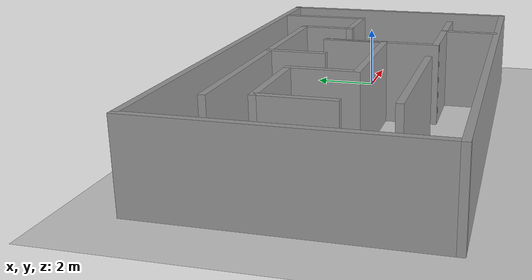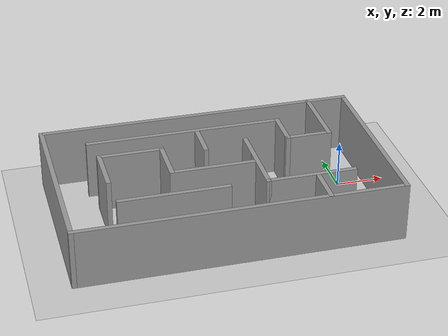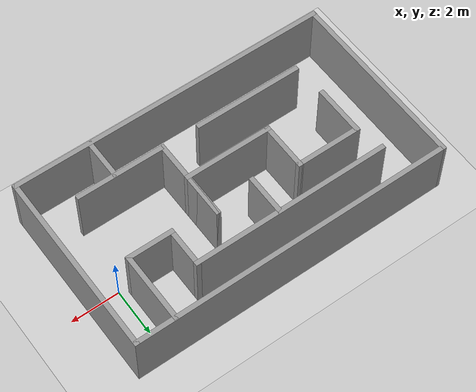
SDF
<?xml version='1.0'?>

<sdf version='1.4'>
  <world name='default'>
        <light name='sun' type='directional'>
      <cast_shadows>1</cast_shadows>
      <pose>0 0 10 0 -0 0</pose>
      <diffuse>0.8 0.8 0.8 1</diffuse>
      <specular>0.2 0.2 0.2 1</specular>
      <attenuation>
        <range>1000</range>
        <constant>0.9</constant>
        <linear>0.01</linear>
        <quadratic>0.001</quadratic>
      </attenuation>
      <direction>-0.5 0.1 -0.9</direction>
    </light>
    <model name='ground_plane'>
      <static>1</static>
      <link name='link'>
        <collision name='collision'>
          <geometry>
            <plane>
              <normal>0 0 1</normal>
              <size>100 100</size>
            </plane>
          </geometry>
          <surface>
            <friction>
              <ode>
                <mu>100</mu>
                <mu2>50</mu2>
              </ode>
            </friction>
            <bounce/>
            <contact>
              <ode/>
            </contact>
          </surface>
          <max_contacts>10</max_contacts>
        </collision>
        <visual name='visual'>
          <cast_shadows>0</cast_shadows>
          <geometry>
            <plane>
              <normal>0 0 1</normal>
              <size>100 100</size>
            </plane>
          </geometry>
          <material>
            <script>
              <uri>file://media/materials/scripts/gazebo.material</uri>
              <name>Gazebo/Grey</name>
            </script>
          </material>
        </visual>
        <velocity_decay>
          <linear>0</linear>
          <angular>0</angular>
        </velocity_decay>
        <self_collide>0</self_collide>
        <kinematic>0</kinematic>
        <gravity>1</gravity>
      </link>
    </model>
    <physics type='ode'>
      <max_step_size>0.001</max_step_size>
      <real_time_factor>1</real_time_factor>
      <real_time_update_rate>1000</real_time_update_rate>
      <gravity>0 0 -9.8</gravity>
    </physics>
    <scene>
      <ambient>0.4 0.4 0.4 1</ambient>
      <background>0.7 0.7 0.7 1</background>
      <shadows>1</shadows>
    </scene>
    <model name='maze_prueba'>
      <link name='Wall_11'>
        <collision name='Wall_11_Collision'>
          <geometry>
            <box>
              <size>3.0143 0.2 2.5</size>
            </box>
          </geometry>
          <pose>0 0 1.25 0 -0 0</pose>
        </collision>
        <visual name='Wall_11_Visual'>
          <pose>0 0 1.25 0 -0 0</pose>
          <geometry>
            <box>
              <size>3.0143 0.2 2.5</size>
            </box>
          </geometry>
          <material>
            <script>
              <uri>file://media/materials/scripts/gazebo.material</uri>
              <name>Gazebo/Grey</name>
            </script>
          </material>
        </visual>
        <velocity_decay>
          <linear>0</linear>
          <angular>0</angular>
        </velocity_decay>
        <pose>-0.416089 1.68494 0 0 0 -1.5708</pose>
      </link>
      <link name='Wall_12'>
        <collision name='Wall_12_Collision'>
          <geometry>
            <box>
              <size>1.99412 0.2 2.5</size>
            </box>
          </geometry>
          <pose>0 0 1.25 0 -0 0</pose>
        </collision>
        <visual name='Wall_12_Visual'>
          <pose>0 0 1.25 0 -0 0</pose>
          <geometry>
            <box>
              <size>1.99412 0.2 2.5</size>
            </box>
          </geometry>
          <material>
            <script>
              <uri>file://media/materials/scripts/gazebo.material</uri>
              <name>Gazebo/Grey</name>
            </script>
          </material>
        </visual>
        <velocity_decay>
          <linear>0</linear>
          <angular>0</angular>
        </velocity_decay>
        <pose>-1.31315 0.277788 0 0 -0 3.14159</pose>
      </link>
      <link name='Wall_13'>
        <collision name='Wall_13_Collision'>
          <geometry>
            <box>
              <size>1.74787 0.2 2.5</size>
            </box>
          </geometry>
          <pose>0 0 1.25 0 -0 0</pose>
        </collision>
        <visual name='Wall_13_Visual'>
          <pose>0 0 1.25 0 -0 0</pose>
          <geometry>
            <box>
              <size>1.74787 0.2 2.5</size>
            </box>
          </geometry>
          <material>
            <script>
              <uri>file://media/materials/scripts/gazebo.material</uri>
              <name>Gazebo/Grey</name>
            </script>
          </material>
        </visual>
        <velocity_decay>
          <linear>0</linear>
          <angular>0</angular>
        </velocity_decay>
        <pose>-2.21021 1.05172 0 0 -0 1.5708</pose>
      </link>
      <link name='Wall_14'>
        <collision name='Wall_14_Collision'>
          <geometry>
            <box>
              <size>8.36147 0.2 2.5</size>
            </box>
          </geometry>
          <pose>0 0 1.25 0 -0 0</pose>
        </collision>
        <visual name='Wall_14_Visual'>
          <pose>0 0 1.25 0 -0 0</pose>
          <geometry>
            <box>
              <size>8.36147 0.2 2.5</size>
            </box>
          </geometry>
          <material>
            <script>
              <uri>file://media/materials/scripts/gazebo.material</uri>
              <name>Gazebo/Grey</name>
            </script>
          </material>
        </visual>
        <velocity_decay>
          <linear>0</linear>
          <angular>0</angular>
        </velocity_decay>
        <pose>-6.29094 1.82565 0 0 -0 3.14159</pose>
      </link>
      <link name='Wall_16'>
        <collision name='Wall_16_Collision'>
          <geometry>
            <box>
              <size>1.78344 0.2 2.5</size>
            </box>
          </geometry>
          <pose>0 0 1.25 0 -0 0</pose>
        </collision>
        <visual name='Wall_16_Visual'>
          <pose>0 0 1.25 0 -0 0</pose>
          <geometry>
            <box>
              <size>1.78344 0.2 2.5</size>
            </box>
          </geometry>
          <material>
            <script>
              <uri>file://media/materials/scripts/gazebo.material</uri>
              <name>Gazebo/Grey</name>
            </script>
          </material>
        </visual>
        <velocity_decay>
          <linear>0</linear>
          <angular>0</angular>
        </velocity_decay>
        <pose>-5.76326 0.999148 0 0 0 -1.5708</pose>
      </link>
      <link name='Wall_18'>
        <collision name='Wall_18_Collision'>
          <geometry>
            <box>
              <size>2.20642 0.2 2.5</size>
            </box>
          </geometry>
          <pose>0 0 1.25 0 -0 0</pose>
        </collision>
        <visual name='Wall_18_Visual'>
          <pose>0 0 1.25 0 -0 0</pose>
          <geometry>
            <box>
              <size>2.20642 0.2 2.5</size>
            </box>
          </geometry>
          <material>
            <script>
              <uri>file://media/materials/scripts/gazebo.material</uri>
              <name>Gazebo/Grey</name>
            </script>
          </material>
        </visual>
        <velocity_decay>
          <linear>0</linear>
          <angular>0</angular>
        </velocity_decay>
        <pose>-10.1254 -0.338457 0 0 -0 1.5708</pose>
      </link>
      <link name='Wall_19'>
        <collision name='Wall_19_Collision'>
          <geometry>
            <box>
              <size>2.80323 0.2 2.5</size>
            </box>
          </geometry>
          <pose>0 0 1.25 0 -0 0</pose>
        </collision>
        <visual name='Wall_19_Visual'>
          <pose>0 0 1.25 0 -0 0</pose>
          <geometry>
            <box>
              <size>2.80323 0.2 2.5</size>
            </box>
          </geometry>
          <material>
            <script>
              <uri>file://media/materials/scripts/gazebo.material</uri>
              <name>Gazebo/Grey</name>
            </script>
          </material>
        </visual>
        <velocity_decay>
          <linear>0</linear>
          <angular>0</angular>
        </velocity_decay>
        <pose>-8.82381 0.664754 0 0 -0 0</pose>
      </link>
      <link name='Wall_20'>
        <collision name='Wall_20_Collision'>
          <geometry>
            <box>
              <size>2.09965 0.2 2.5</size>
            </box>
          </geometry>
          <pose>0 0 1.25 0 -0 0</pose>
        </collision>
        <visual name='Wall_20_Visual'>
          <pose>0 0 1.25 0 -0 0</pose>
          <geometry>
            <box>
              <size>2.09965 0.2 2.5</size>
            </box>
          </geometry>
          <material>
            <script>
              <uri>file://media/materials/scripts/gazebo.material</uri>
              <name>Gazebo/Grey</name>
            </script>
          </material>
        </visual>
        <velocity_decay>
          <linear>0</linear>
          <angular>0</angular>
        </velocity_decay>
        <pose>-7.5222 -0.285072 0 0 0 -1.5708</pose>
      </link>
      <link name='Wall_21'>
        <collision name='Wall_21_Collision'>
          <geometry>
            <box>
              <size>3.75305 0.2 2.5</size>
            </box>
          </geometry>
          <pose>0 0 1.25 0 -0 0</pose>
        </collision>
        <visual name='Wall_21_Visual'>
          <pose>0 0 1.25 0 -0 0</pose>
          <geometry>
            <box>
              <size>3.75305 0.2 2.5</size>
            </box>
          </geometry>
          <material>
            <script>
              <uri>file://media/materials/scripts/gazebo.material</uri>
              <name>Gazebo/Grey</name>
            </script>
          </material>
        </visual>
        <velocity_decay>
          <linear>0</linear>
          <angular>0</angular>
        </velocity_decay>
        <pose>-5.74567 -1.2349 0 0 -0 0</pose>
      </link>
      <link name='Wall_22'>
        <collision name='Wall_22_Collision'>
          <geometry>
            <box>
              <size>1.99412 0.2 2.5</size>
            </box>
          </geometry>
          <pose>0 0 1.25 0 -0 0</pose>
        </collision>
        <visual name='Wall_22_Visual'>
          <pose>0 0 1.25 0 -0 0</pose>
          <geometry>
            <box>
              <size>1.99412 0.2 2.5</size>
            </box>
          </geometry>
          <material>
            <script>
              <uri>file://media/materials/scripts/gazebo.material</uri>
              <name>Gazebo/Grey</name>
            </script>
          </material>
        </visual>
        <velocity_decay>
          <linear>0</linear>
          <angular>0</angular>
        </velocity_decay>
        <pose>-3.96915 -0.33784 0 0 -0 1.5708</pose>
      </link>
      <link name='Wall_23'>
        <collision name='Wall_23_Collision'>
          <geometry>
            <box>
              <size>3.57716 0.2 2.5</size>
            </box>
          </geometry>
          <pose>0 0 1.25 0 -0 0</pose>
        </collision>
        <visual name='Wall_23_Visual'>
          <pose>0 0 1.25 0 -0 0</pose>
          <geometry>
            <box>
              <size>3.57716 0.2 2.5</size>
            </box>
          </geometry>
          <material>
            <script>
              <uri>file://media/materials/scripts/gazebo.material</uri>
              <name>Gazebo/Grey</name>
            </script>
          </material>
        </visual>
        <velocity_decay>
          <linear>0</linear>
          <angular>0</angular>
        </velocity_decay>
        <pose>-3.96915 -1.12936 0 0 0 -1.5708</pose>
      </link>
      <link name='Wall_24'>
        <collision name='Wall_24_Collision'>
          <geometry>
            <box>
              <size>3.78823 0.2 2.5</size>
            </box>
          </geometry>
          <pose>0 0 1.25 0 -0 0</pose>
        </collision>
        <visual name='Wall_24_Visual'>
          <pose>0 0 1.25 0 -0 0</pose>
          <geometry>
            <box>
              <size>3.78823 0.2 2.5</size>
            </box>
          </geometry>
          <material>
            <script>
              <uri>file://media/materials/scripts/gazebo.material</uri>
              <name>Gazebo/Grey</name>
            </script>
          </material>
        </visual>
        <velocity_decay>
          <linear>0</linear>
          <angular>0</angular>
        </velocity_decay>
        <pose>-2.17503 -2.81794 0 0 -0 0</pose>
      </link>
      <link name='Wall_26'>
        <collision name='Wall_26_Collision'>
          <geometry>
            <box>
              <size>1.81822 0.2 2.5</size>
            </box>
          </geometry>
          <pose>0 0 1.25 0 -0 0</pose>
        </collision>
        <visual name='Wall_26_Visual'>
          <pose>0 0 1.25 0 -0 0</pose>
          <geometry>
            <box>
              <size>1.81822 0.2 2.5</size>
            </box>
          </geometry>
          <material>
            <script>
              <uri>file://media/materials/scripts/gazebo.material</uri>
              <name>Gazebo/Grey</name>
            </script>
          </material>
        </visual>
        <velocity_decay>
          <linear>0</linear>
          <angular>0</angular>
        </velocity_decay>
        <pose>-1.92878 -3.66223 0 0 0 -1.5708</pose>
      </link>
      <link name='Wall_3'>
        <collision name='Wall_3_Collision'>
          <geometry>
            <box>
              <size>13.3932 0.2 2.5</size>
            </box>
          </geometry>
          <pose>0 0 1.25 0 -0 0</pose>
        </collision>
        <visual name='Wall_3_Visual'>
          <pose>0 0 1.25 0 -0 0</pose>
          <geometry>
            <box>
              <size>13.3932 0.2 2.5</size>
            </box>
          </geometry>
          <material>
            <script>
              <uri>file://media/materials/scripts/gazebo.material</uri>
              <name>Gazebo/Grey</name>
            </script>
          </material>
        </visual>
        <velocity_decay>
          <linear>0</linear>
          <angular>0</angular>
        </velocity_decay>
        <pose>-5.39447 3.12727 0 0 -0 0</pose>
      </link>
      <link name='Wall_31'>
        <collision name='Wall_31_Collision'>
          <geometry>
            <box>
              <size>4.59734 0.2 2.5</size>
            </box>
          </geometry>
          <pose>0 0 1.25 0 -0 0</pose>
        </collision>
        <visual name='Wall_31_Visual'>
          <pose>0 0 1.25 0 -0 0</pose>
          <geometry>
            <box>
              <size>4.59734 0.2 2.5</size>
            </box>
          </geometry>
          <material>
            <script>
              <uri>file://media/materials/scripts/gazebo.material</uri>
              <name>Gazebo/Grey</name>
            </script>
          </material>
        </visual>
        <velocity_decay>
          <linear>0</linear>
          <angular>0</angular>
        </velocity_decay>
        <pose>-7.78604 -2.81794 0 0 -0 0</pose>
      </link>
      <link name='Wall_4'>
        <collision name='Wall_4_Collision'>
          <geometry>
            <box>
              <size>7.83379 0.2 2.5</size>
            </box>
          </geometry>
          <pose>0 0 1.25 0 -0 0</pose>
        </collision>
        <visual name='Wall_4_Visual'>
          <pose>0 0 1.25 0 -0 0</pose>
          <geometry>
            <box>
              <size>7.83379 0.2 2.5</size>
            </box>
          </geometry>
          <material>
            <script>
              <uri>file://media/materials/scripts/gazebo.material</uri>
              <name>Gazebo/Grey</name>
            </script>
          </material>
        </visual>
        <velocity_decay>
          <linear>0</linear>
          <angular>0</angular>
        </velocity_decay>
        <pose>1.20213 -0.689628 0 0 0 -1.5708</pose>
      </link>
      <link name='Wall_5'>
        <collision name='Wall_5_Collision'>
          <geometry>
            <box>
              <size>13.5328 0.2 2.5</size>
            </box>
          </geometry>
          <pose>0 0 1.25 0 -0 0</pose>
        </collision>
        <visual name='Wall_5_Visual'>
          <pose>0 0 1.25 0 -0 0</pose>
          <geometry>
            <box>
              <size>13.5328 0.2 2.5</size>
            </box>
          </geometry>
          <material>
            <script>
              <uri>file://media/materials/scripts/gazebo.material</uri>
              <name>Gazebo/Grey</name>
            </script>
          </material>
        </visual>
        <velocity_decay>
          <linear>0</linear>
          <angular>0</angular>
        </velocity_decay>
        <pose>-5.46424 -4.50652 0 0 -0 3.14159</pose>
      </link>
      <link name='Wall_6'>
        <collision name='Wall_6_Collision'>
          <geometry>
            <box>
              <size>7.83379 0.2 2.5</size>
            </box>
          </geometry>
          <pose>0 0 1.25 0 -0 0</pose>
        </collision>
        <visual name='Wall_6_Visual'>
          <pose>0 0 1.25 0 -0 0</pose>
          <geometry>
            <box>
              <size>7.83379 0.2 2.5</size>
            </box>
          </geometry>
          <material>
            <script>
              <uri>file://media/materials/scripts/gazebo.material</uri>
              <name>Gazebo/Grey</name>
            </script>
          </material>
        </visual>
        <velocity_decay>
          <linear>0</linear>
          <angular>0</angular>
        </velocity_decay>
        <pose>-12.1306 -0.689628 0 0 -0 1.5708</pose>
      </link>
      <static>1</static>
    </model>

  </world>
</sdf>
